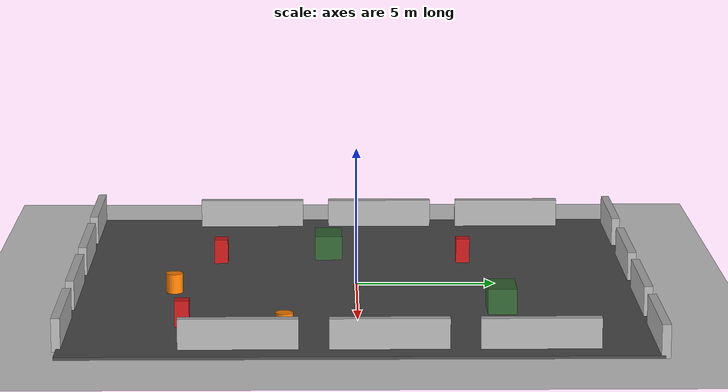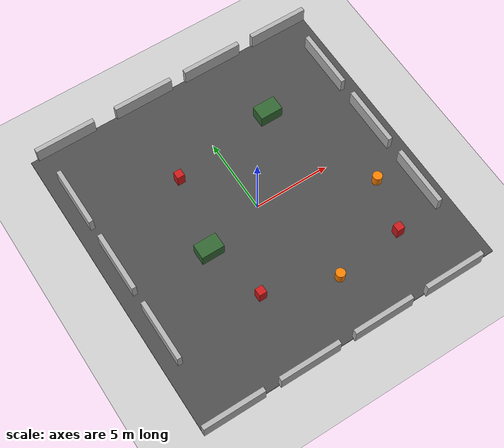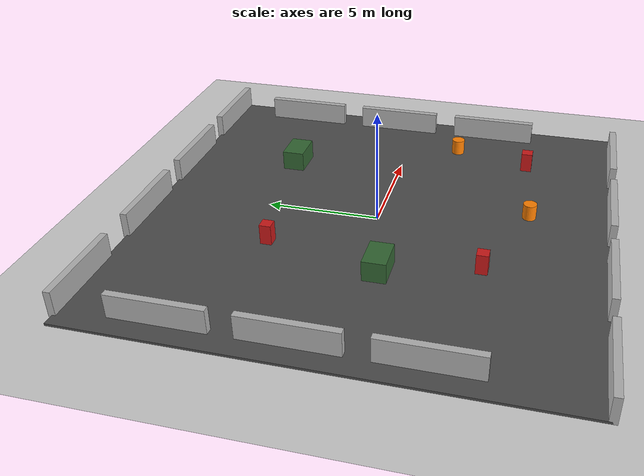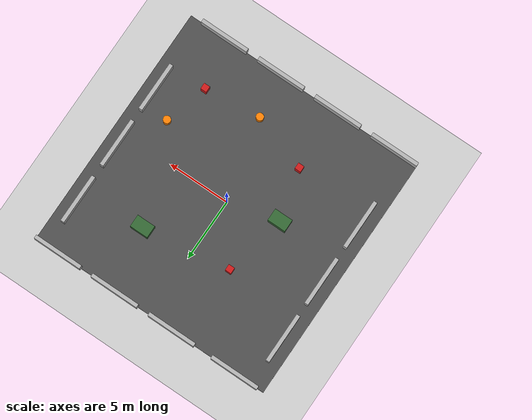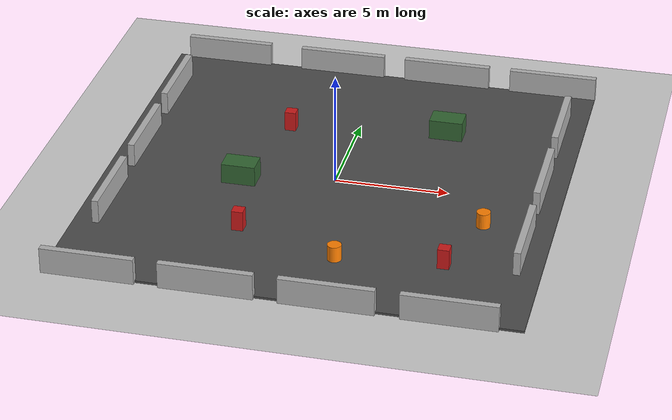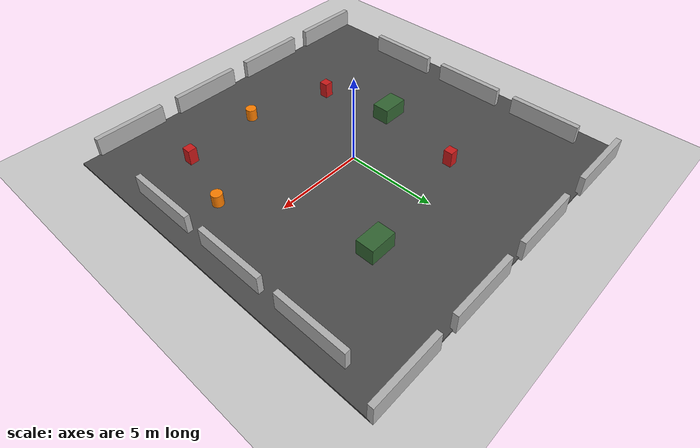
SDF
<?xml version="1.0"?>
<sdf version='1.6'>
  <world name='default'>

    <!-- Geographic Reference for GPS -->
    <spherical_coordinates>
      <surface_model>EARTH_WGS84</surface_model>
      <world_frame_orientation>ENU</world_frame_orientation>
      <latitude_deg>40.1106</latitude_deg>
      <longitude_deg>-88.2073</longitude_deg>
      <elevation>220.0</elevation>
      <heading_deg>0</heading_deg>
    </spherical_coordinates>

    <!-- Physics -->
    <physics name="1ms" type="ode">
      <max_step_size>0.001</max_step_size>
      <real_time_factor>1.0</real_time_factor>
      <real_time_update_rate>1000</real_time_update_rate>
    </physics>

    <!-- Ignition Plugins -->
    <plugin filename="libignition-gazebo-physics-system.so" name="ignition::gazebo::systems::Physics">
    </plugin>
    <plugin filename="libignition-gazebo-user-commands-system.so" name="ignition::gazebo::systems::UserCommands">
    </plugin>
    <plugin filename="libignition-gazebo-scene-broadcaster-system.so" name="ignition::gazebo::systems::SceneBroadcaster">
    </plugin>

    <!-- Lighting -->
    <light name='sun' type='directional'>
      <cast_shadows>true</cast_shadows>
      <pose>0 0 10 0 0 0</pose>
      <diffuse>0.8 0.8 0.8 1</diffuse>
      <specular>0.2 0.2 0.2 1</specular>
      <attenuation>
        <range>1000</range>
        <constant>0.9</constant>
        <linear>0.01</linear>
        <quadratic>0.001</quadratic>
      </attenuation>
      <direction>-0.5 0.1 -0.9</direction>
    </light>

    <!-- Scene -->
    <scene>
      <ambient>0.4 0.4 0.4 1</ambient>
      <background>0.7 0.7 0.7 1</background>
      <shadows>true</shadows>
    </scene>

    <!-- Ground Plane -->
    <model name='ground_plane'>
      <static>true</static>
      <link name='link'>
        <collision name='collision'>
          <geometry>
            <plane>
              <normal>0 0 1</normal>
              <size>100 100</size>
            </plane>
          </geometry>
          <surface>
            <friction>
              <ode>
                <mu>100</mu>
                <mu2>50</mu2>
              </ode>
            </friction>
          </surface>
        </collision>
        <visual name='visual'>
          <cast_shadows>false</cast_shadows>
          <geometry>
            <plane>
              <normal>0 0 1</normal>
              <size>100 100</size>
            </plane>
          </geometry>
          <material>
            <ambient>0.8 0.8 0.8 1</ambient>
            <diffuse>0.8 0.8 0.8 1</diffuse>
            <specular>0.8 0.8 0.8 1</specular>
          </material>
        </visual>
      </link>
    </model>

    <!-- Asphalt plane -->
    <model name='asphalt_plane'>
      <static>true</static>
      <pose>0 0 0.05 0 0 0</pose>
      <link name='link'>
        <collision name='collision'>
          <geometry>
            <box>
              <size>20 20 0.1</size>
            </box>
          </geometry>
        </collision>
        <visual name='visual'>
          <cast_shadows>false</cast_shadows>
          <geometry>
            <box>
              <size>20 20 0.1</size>
            </box>
          </geometry>
          <material>
            <ambient>0.3 0.3 0.3 1</ambient>
            <diffuse>0.3 0.3 0.3 1</diffuse>
            <specular>0.1 0.1 0.1 1</specular>
          </material>
        </visual>
      </link>
    </model>

    <!-- Jersey Barriers (simplified - keeping collisions only) -->
    <!-- South wall -->
    <model name='jersey_barrier_0'>
      <static>true</static>
      <pose>-8 -10 0 0 0 0</pose>
      <link name='link'>
        <collision name='collision'>
          <pose>0 0 0.5715 0 0 0</pose>
          <geometry>
            <box>
              <size>4.0 0.3 1.143</size>
            </box>
          </geometry>
        </collision>
        <visual name='visual'>
          <pose>0 0 0.5715 0 0 0</pose>
          <geometry>
            <box>
              <size>4.0 0.3 1.143</size>
            </box>
          </geometry>
          <material>
            <ambient>0.7 0.7 0.7 1</ambient>
            <diffuse>0.7 0.7 0.7 1</diffuse>
          </material>
        </visual>
      </link>
    </model>

    <model name='jersey_barrier_1'>
      <static>true</static>
      <pose>-3 -10 0 0 0 0</pose>
      <link name='link'>
        <collision name='collision'>
          <pose>0 0 0.5715 0 0 0</pose>
          <geometry>
            <box>
              <size>4.0 0.3 1.143</size>
            </box>
          </geometry>
        </collision>
        <visual name='visual'>
          <pose>0 0 0.5715 0 0 0</pose>
          <geometry>
            <box>
              <size>4.0 0.3 1.143</size>
            </box>
          </geometry>
          <material>
            <ambient>0.7 0.7 0.7 1</ambient>
            <diffuse>0.7 0.7 0.7 1</diffuse>
          </material>
        </visual>
      </link>
    </model>

    <model name='jersey_barrier_2'>
      <static>true</static>
      <pose>2 -10 0 0 0 0</pose>
      <link name='link'>
        <collision name='collision'>
          <pose>0 0 0.5715 0 0 0</pose>
          <geometry>
            <box>
              <size>4.0 0.3 1.143</size>
            </box>
          </geometry>
        </collision>
        <visual name='visual'>
          <pose>0 0 0.5715 0 0 0</pose>
          <geometry>
            <box>
              <size>4.0 0.3 1.143</size>
            </box>
          </geometry>
          <material>
            <ambient>0.7 0.7 0.7 1</ambient>
            <diffuse>0.7 0.7 0.7 1</diffuse>
          </material>
        </visual>
      </link>
    </model>

    <model name='jersey_barrier_3'>
      <static>true</static>
      <pose>7 -10 0 0 0 0</pose>
      <link name='link'>
        <collision name='collision'>
          <pose>0 0 0.5715 0 0 0</pose>
          <geometry>
            <box>
              <size>4.0 0.3 1.143</size>
            </box>
          </geometry>
        </collision>
        <visual name='visual'>
          <pose>0 0 0.5715 0 0 0</pose>
          <geometry>
            <box>
              <size>4.0 0.3 1.143</size>
            </box>
          </geometry>
          <material>
            <ambient>0.7 0.7 0.7 1</ambient>
            <diffuse>0.7 0.7 0.7 1</diffuse>
          </material>
        </visual>
      </link>
    </model>

    <!-- North wall -->
    <model name='jersey_barrier_4'>
      <static>true</static>
      <pose>-7.5 10 0 0 0 0</pose>
      <link name='link'>
        <collision name='collision'>
          <pose>0 0 0.5715 0 0 0</pose>
          <geometry>
            <box>
              <size>4.0 0.3 1.143</size>
            </box>
          </geometry>
        </collision>
        <visual name='visual'>
          <pose>0 0 0.5715 0 0 0</pose>
          <geometry>
            <box>
              <size>4.0 0.3 1.143</size>
            </box>
          </geometry>
          <material>
            <ambient>0.7 0.7 0.7 1</ambient>
            <diffuse>0.7 0.7 0.7 1</diffuse>
          </material>
        </visual>
      </link>
    </model>

    <model name='jersey_barrier_5'>
      <static>true</static>
      <pose>-2 10 0 0 0 0</pose>
      <link name='link'>
        <collision name='collision'>
          <pose>0 0 0.5715 0 0 0</pose>
          <geometry>
            <box>
              <size>4.0 0.3 1.143</size>
            </box>
          </geometry>
        </collision>
        <visual name='visual'>
          <pose>0 0 0.5715 0 0 0</pose>
          <geometry>
            <box>
              <size>4.0 0.3 1.143</size>
            </box>
          </geometry>
          <material>
            <ambient>0.7 0.7 0.7 1</ambient>
            <diffuse>0.7 0.7 0.7 1</diffuse>
          </material>
        </visual>
      </link>
    </model>

    <model name='jersey_barrier_6'>
      <static>true</static>
      <pose>3 10 0 0 0 0</pose>
      <link name='link'>
        <collision name='collision'>
          <pose>0 0 0.5715 0 0 0</pose>
          <geometry>
            <box>
              <size>4.0 0.3 1.143</size>
            </box>
          </geometry>
        </collision>
        <visual name='visual'>
          <pose>0 0 0.5715 0 0 0</pose>
          <geometry>
            <box>
              <size>4.0 0.3 1.143</size>
            </box>
          </geometry>
          <material>
            <ambient>0.7 0.7 0.7 1</ambient>
            <diffuse>0.7 0.7 0.7 1</diffuse>
          </material>
        </visual>
      </link>
    </model>

    <model name='jersey_barrier_7'>
      <static>true</static>
      <pose>8 10 0 0 0 0</pose>
      <link name='link'>
        <collision name='collision'>
          <pose>0 0 0.5715 0 0 0</pose>
          <geometry>
            <box>
              <size>4.0 0.3 1.143</size>
            </box>
          </geometry>
        </collision>
        <visual name='visual'>
          <pose>0 0 0.5715 0 0 0</pose>
          <geometry>
            <box>
              <size>4.0 0.3 1.143</size>
            </box>
          </geometry>
          <material>
            <ambient>0.7 0.7 0.7 1</ambient>
            <diffuse>0.7 0.7 0.7 1</diffuse>
          </material>
        </visual>
      </link>
    </model>

    <!-- East and West walls -->
    <model name='jersey_barrier_east_1'>
      <static>true</static>
      <pose>9 -4 0 0 0 1.57</pose>
      <link name='link'>
        <collision name='collision'>
          <pose>0 0 0.5715 0 0 0</pose>
          <geometry>
            <box>
              <size>4.0 0.3 1.143</size>
            </box>
          </geometry>
        </collision>
        <visual name='visual'>
          <pose>0 0 0.5715 0 0 0</pose>
          <geometry>
            <box>
              <size>4.0 0.3 1.143</size>
            </box>
          </geometry>
          <material>
            <ambient>0.7 0.7 0.7 1</ambient>
            <diffuse>0.7 0.7 0.7 1</diffuse>
          </material>
        </visual>
      </link>
    </model>

    <model name='jersey_barrier_east_2'>
      <static>true</static>
      <pose>9 1 0 0 0 1.57</pose>
      <link name='link'>
        <collision name='collision'>
          <pose>0 0 0.5715 0 0 0</pose>
          <geometry>
            <box>
              <size>4.0 0.3 1.143</size>
            </box>
          </geometry>
        </collision>
        <visual name='visual'>
          <pose>0 0 0.5715 0 0 0</pose>
          <geometry>
            <box>
              <size>4.0 0.3 1.143</size>
            </box>
          </geometry>
          <material>
            <ambient>0.7 0.7 0.7 1</ambient>
            <diffuse>0.7 0.7 0.7 1</diffuse>
          </material>
        </visual>
      </link>
    </model>

    <model name='jersey_barrier_east_3'>
      <static>true</static>
      <pose>9 6 0 0 0 1.57</pose>
      <link name='link'>
        <collision name='collision'>
          <pose>0 0 0.5715 0 0 0</pose>
          <geometry>
            <box>
              <size>4.0 0.3 1.143</size>
            </box>
          </geometry>
        </collision>
        <visual name='visual'>
          <pose>0 0 0.5715 0 0 0</pose>
          <geometry>
            <box>
              <size>4.0 0.3 1.143</size>
            </box>
          </geometry>
          <material>
            <ambient>0.7 0.7 0.7 1</ambient>
            <diffuse>0.7 0.7 0.7 1</diffuse>
          </material>
        </visual>
      </link>
    </model>

    <model name='jersey_barrier_west_1'>
      <static>true</static>
      <pose>-9 -4 0 0 0 1.57</pose>
      <link name='link'>
        <collision name='collision'>
          <pose>0 0 0.5715 0 0 0</pose>
          <geometry>
            <box>
              <size>4.0 0.3 1.143</size>
            </box>
          </geometry>
        </collision>
        <visual name='visual'>
          <pose>0 0 0.5715 0 0 0</pose>
          <geometry>
            <box>
              <size>4.0 0.3 1.143</size>
            </box>
          </geometry>
          <material>
            <ambient>0.7 0.7 0.7 1</ambient>
            <diffuse>0.7 0.7 0.7 1</diffuse>
          </material>
        </visual>
      </link>
    </model>

    <model name='jersey_barrier_west_2'>
      <static>true</static>
      <pose>-9 1 0 0 0 1.57</pose>
      <link name='link'>
        <collision name='collision'>
          <pose>0 0 0.5715 0 0 0</pose>
          <geometry>
            <box>
              <size>4.0 0.3 1.143</size>
            </box>
          </geometry>
        </collision>
        <visual name='visual'>
          <pose>0 0 0.5715 0 0 0</pose>
          <geometry>
            <box>
              <size>4.0 0.3 1.143</size>
            </box>
          </geometry>
          <material>
            <ambient>0.7 0.7 0.7 1</ambient>
            <diffuse>0.7 0.7 0.7 1</diffuse>
          </material>
        </visual>
      </link>
    </model>

    <model name='jersey_barrier_west_3'>
      <static>true</static>
      <pose>-9 6 0 0 0 1.57</pose>
      <link name='link'>
        <collision name='collision'>
          <pose>0 0 0.5715 0 0 0</pose>
          <geometry>
            <box>
              <size>4.0 0.3 1.143</size>
            </box>
          </geometry>
        </collision>
        <visual name='visual'>
          <pose>0 0 0.5715 0 0 0</pose>
          <geometry>
            <box>
              <size>4.0 0.3 1.143</size>
            </box>
          </geometry>
          <material>
            <ambient>0.7 0.7 0.7 1</ambient>
            <diffuse>0.7 0.7 0.7 1</diffuse>
          </material>
        </visual>
      </link>
    </model>

    <!-- Simple obstacle boxes (replacing complex meshes) -->
    <model name='box_obstacle_1'>
      <static>true</static>
      <pose>6 -6 0.5 0 0 0</pose>
      <link name='link'>
        <collision name='collision'>
          <geometry>
            <box>
              <size>0.5 0.5 1.0</size>
            </box>
          </geometry>
        </collision>
        <visual name='visual'>
          <geometry>
            <box>
              <size>0.5 0.5 1.0</size>
            </box>
          </geometry>
          <material>
            <ambient>0.8 0.1 0.1 1</ambient>
            <diffuse>0.8 0.1 0.1 1</diffuse>
          </material>
        </visual>
      </link>
    </model>

    <model name='box_obstacle_2'>
      <static>true</static>
      <pose>-3 4 0.5 0 0 0</pose>
      <link name='link'>
        <collision name='collision'>
          <geometry>
            <box>
              <size>0.5 0.5 1.0</size>
            </box>
          </geometry>
        </collision>
        <visual name='visual'>
          <geometry>
            <box>
              <size>0.5 0.5 1.0</size>
            </box>
          </geometry>
          <material>
            <ambient>0.8 0.1 0.1 1</ambient>
            <diffuse>0.8 0.1 0.1 1</diffuse>
          </material>
        </visual>
      </link>
    </model>

    <model name='box_obstacle_3'>
      <static>true</static>
      <pose>-3 -5 0.5 0 0 0</pose>
      <link name='link'>
        <collision name='collision'>
          <geometry>
            <box>
              <size>0.5 0.5 1.0</size>
            </box>
          </geometry>
        </collision>
        <visual name='visual'>
          <geometry>
            <box>
              <size>0.5 0.5 1.0</size>
            </box>
          </geometry>
          <material>
            <ambient>0.8 0.1 0.1 1</ambient>
            <diffuse>0.8 0.1 0.1 1</diffuse>
          </material>
        </visual>
      </link>
    </model>

    <!-- Large boxes (replacing dumpsters) -->
    <model name='large_box_1'>
      <static>false</static>
      <pose>4 5 0.5 0 0 0</pose>
      <link name='link'>
        <inertial>
          <mass>50</mass>
          <inertia>
            <ixx>10</ixx>
            <iyy>10</iyy>
            <izz>10</izz>
          </inertia>
        </inertial>
        <collision name='collision'>
          <geometry>
            <box>
              <size>1.5 1.0 1.0</size>
            </box>
          </geometry>
        </collision>
        <visual name='visual'>
          <geometry>
            <box>
              <size>1.5 1.0 1.0</size>
            </box>
          </geometry>
          <material>
            <ambient>0.2 0.4 0.2 1</ambient>
            <diffuse>0.2 0.4 0.2 1</diffuse>
          </material>
        </visual>
      </link>
    </model>

    <model name='large_box_2'>
      <static>false</static>
      <pose>-4 -1 0.5 0 0 0</pose>
      <link name='link'>
        <inertial>
          <mass>50</mass>
          <inertia>
            <ixx>10</ixx>
            <iyy>10</iyy>
            <izz>10</izz>
          </inertia>
        </inertial>
        <collision name='collision'>
          <geometry>
            <box>
              <size>1.5 1.0 1.0</size>
            </box>
          </geometry>
        </collision>
        <visual name='visual'>
          <geometry>
            <box>
              <size>1.5 1.0 1.0</size>
            </box>
          </geometry>
          <material>
            <ambient>0.2 0.4 0.2 1</ambient>
            <diffuse>0.2 0.4 0.2 1</diffuse>
          </material>
        </visual>
      </link>
    </model>

    <!-- Cylinders (replacing cones/barrels) -->
    <model name='cylinder_1'>
      <static>false</static>
      <pose>7 -2.5 0.4 0 0 0</pose>
      <link name='link'>
        <inertial>
          <mass>20</mass>
          <inertia>
            <ixx>2</ixx>
            <iyy>2</iyy>
            <izz>1</izz>
          </inertia>
        </inertial>
        <collision name='collision'>
          <geometry>
            <cylinder>
              <radius>0.3</radius>
              <length>0.8</length>
            </cylinder>
          </geometry>
        </collision>
        <visual name='visual'>
          <geometry>
            <cylinder>
              <radius>0.3</radius>
              <length>0.8</length>
            </cylinder>
          </geometry>
          <material>
            <ambient>1.0 0.5 0.0 1</ambient>
            <diffuse>1.0 0.5 0.0 1</diffuse>
          </material>
        </visual>
      </link>
    </model>

    <model name='cylinder_2'>
      <static>false</static>
      <pose>1.5 -6.5 0.4 0 0 0</pose>
      <link name='link'>
        <inertial>
          <mass>20</mass>
          <inertia>
            <ixx>2</ixx>
            <iyy>2</iyy>
            <izz>1</izz>
          </inertia>
        </inertial>
        <collision name='collision'>
          <geometry>
            <cylinder>
              <radius>0.3</radius>
              <length>0.8</length>
            </cylinder>
          </geometry>
        </collision>
        <visual name='visual'>
          <geometry>
            <cylinder>
              <radius>0.3</radius>
              <length>0.8</length>
            </cylinder>
          </geometry>
          <material>
            <ambient>1.0 0.5 0.0 1</ambient>
            <diffuse>1.0 0.5 0.0 1</diffuse>
          </material>
        </visual>
      </link>
    </model>

  </world>
</sdf>
